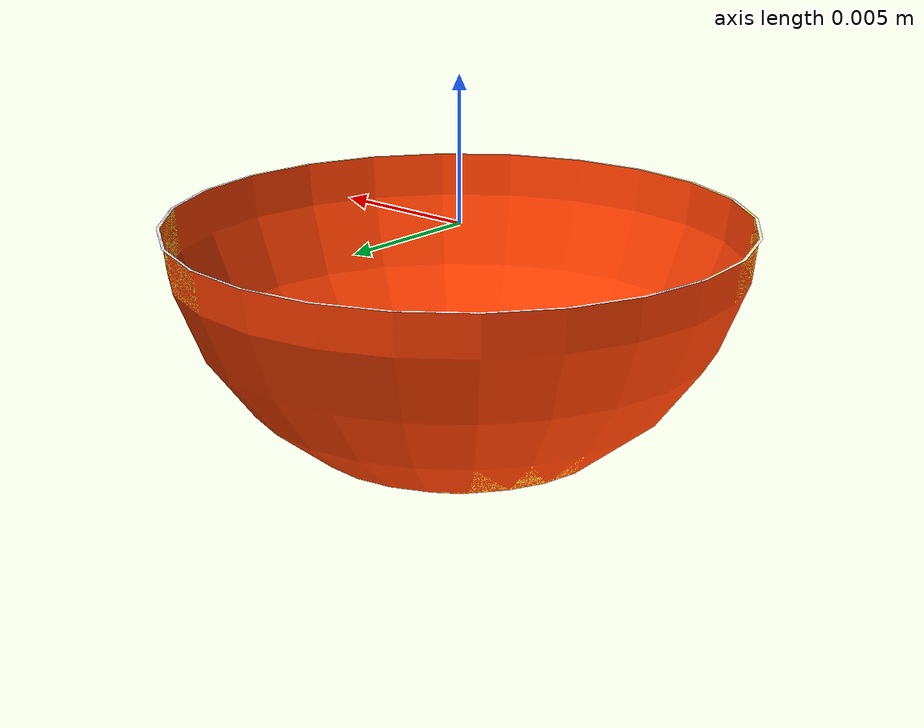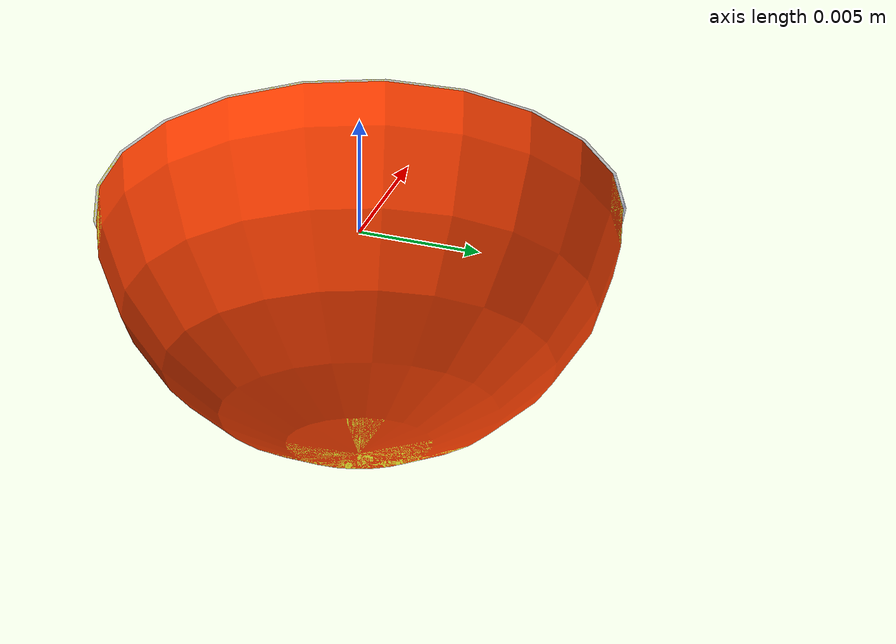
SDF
<?xml version="1.0" ?>
<sdf version="1.4">
  <model name="bowl">
    <link name="link">
      <collision name="collision">
        <pose>0 0 0 0 0 0</pose>
        <geometry>
          <mesh>
            <uri>model://bowl/meshes/bowl.dae</uri>
          </mesh>
        </geometry>
      </collision>
      <visual name="visual">
        <pose>0 0 0 0 0 0</pose>
        <geometry>
          <mesh>
            <uri>model://bowl/meshes/bowl.dae</uri>
          </mesh>
        </geometry>
      </visual>
    </link>
    <static>1</static>
  </model>
</sdf>
